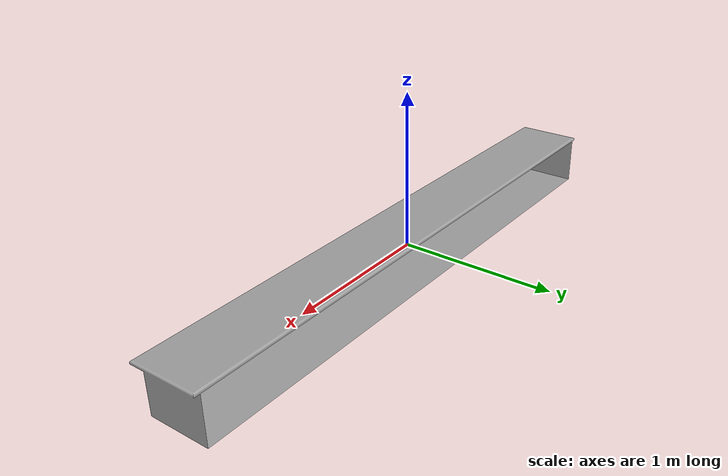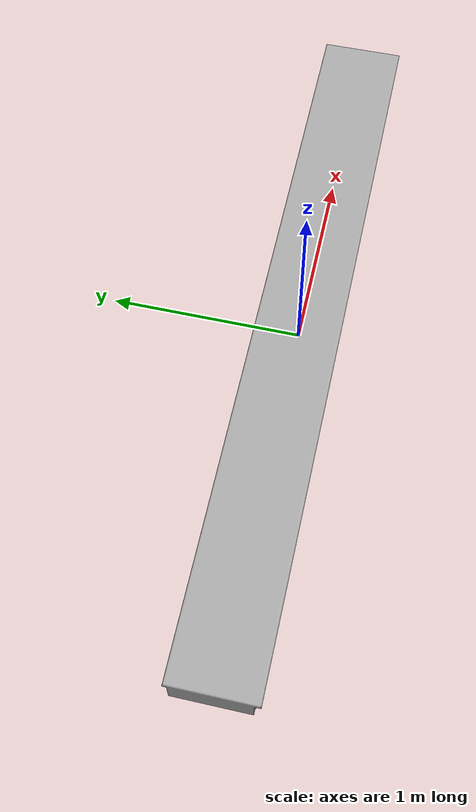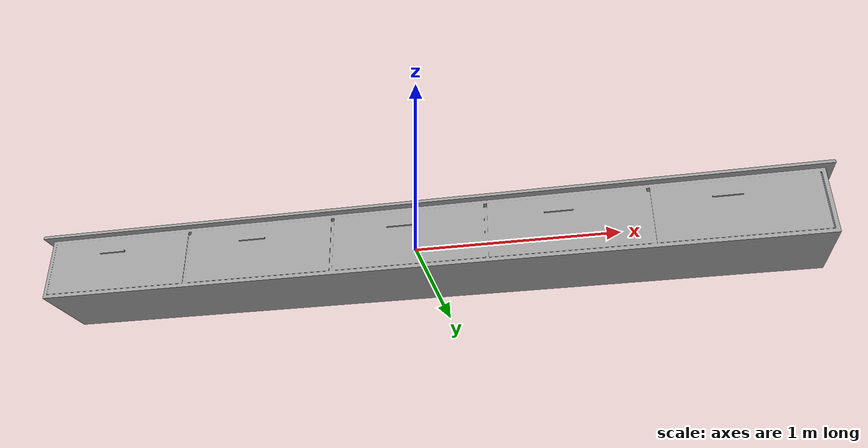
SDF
<?xml version="1.0" ?>
<sdf version="1.5">
  <model name="tv-stand">
    <static>true</static>
    <link name="tv_stand_link">
        <pose>0 0 0 0 0 0</pose>
        <collision name="tv_stand_collision">
         <geometry>
	          <box>
                <size>3.9 .44 .34</size>
            </box>
        </geometry>
        <surface>
          <friction>
            <ode>
              <mu>100</mu>
              <mu2>50</mu2>
            </ode>
          </friction>
        </surface>
      </collision>

      <visual name="tv_stand_mesh">
        <cast_shadows>true</cast_shadows>
        <geometry>
            <mesh>
                <uri>model://lc_tv_stand/meshes/tv_stand.dae</uri>
            </mesh>
        </geometry>
	    <material>
          <script>
            <uri>model://lc_tv_stand/materials/scripts</uri>
            <uri>model://lc_tv_stand/materials/textures</uri>
            <name>tvStandMat/Diffuse</name>
          </script>
        </material>
      </visual>
    </link>
  </model>
</sdf>
